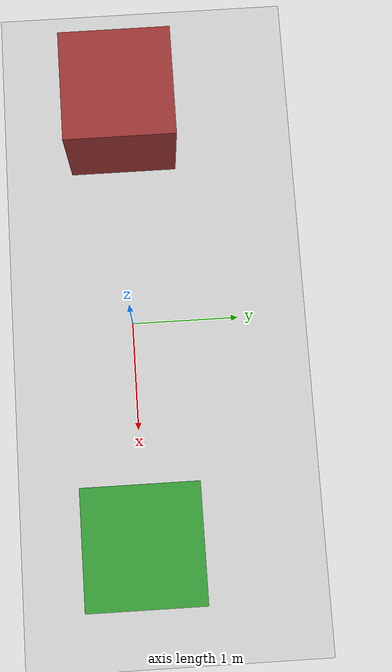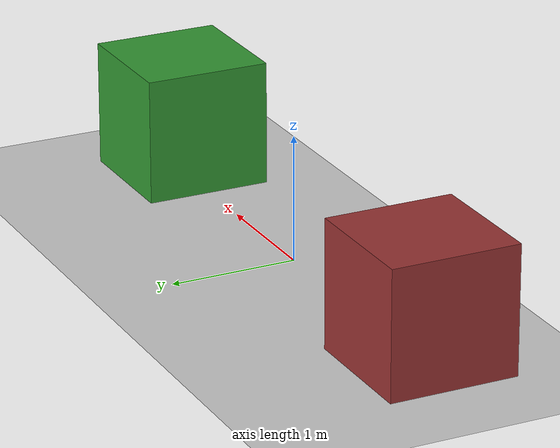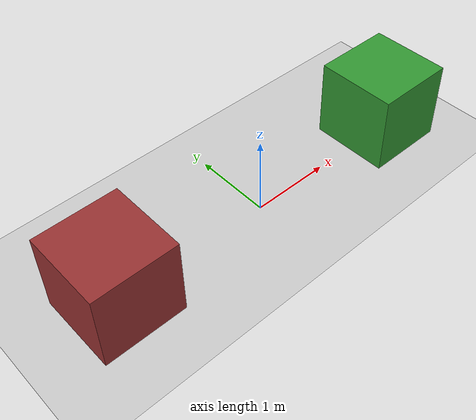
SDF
<?xml version="1.0" ?>
<sdf version="1.6">
  <world name="slip_world">

    <gui fullscreen="0">
      <plugin filename="GzScene3D" name="3D View">
        <gz-gui>
          <title>3D View</title>
          <property type="bool" key="showTitleBar">false</property>
          <property type="string" key="state">docked</property>
        </gz-gui>
        <engine>ogre2</engine>
        <scene>scene</scene>
        <ambient_light>0.4 0.4 0.4</ambient_light>
        <background_color>0.8 0.8 0.8</background_color>
      </plugin>
      <plugin filename="WorldControl" name="World control">
        <gz-gui>
          <title>World control</title>
          <property type="bool" key="showTitleBar">false</property>
          <property type="string" key="state">floating</property>
          <property type="double" key="x">0</property>
          <property type="double" key="y">0</property>
        </gz-gui>
        <play_pause>true</play_pause>
        <step>true</step>
        <start_paused>false</start_paused>
      </plugin>
      <!-- Draws lidar rays in the 3D viewport -->
      <plugin filename="VisualizeLidar" name="Visualize Lidar">
        <gz-gui>
          <property type="string" key="state">floating</property>
          <property type="double" key="x">0</property>
          <property type="double" key="y">50</property>
          <property type="double" key="width">300</property>
          <property type="double" key="height">200</property>
        </gz-gui>
      </plugin>
    </gui>

    <physics name="1ms" type="ignored">
      <max_step_size>0.001</max_step_size>
      <real_time_factor>1.0</real_time_factor>
    </physics>

    <plugin filename="gz-sim-physics-system"
            name="gz::sim::systems::Physics"/>
    <plugin filename="gz-sim-user-commands-system"
            name="gz::sim::systems::UserCommands"/>
    <plugin filename="gz-sim-scene-broadcaster-system"
            name="gz::sim::systems::SceneBroadcaster"/>
    <plugin filename="gz-sim-contact-system"
            name="gz::sim::systems::Contact"/>

    <!-- Required for ALL sensors to publish data. No render_engine specified
         so ogre2 failure does not block CPU-based sensors (lidar, IMU). -->
    <plugin filename="gz-sim-sensors-system"
            name="gz::sim::systems::Sensors"/>

    <!-- Required for IMU sensor to publish data -->
    <plugin filename="gz-sim-imu-system"
            name="gz::sim::systems::Imu"/>

    <light type="directional" name="sun">
      <cast_shadows>true</cast_shadows>
      <pose>0 0 10 0 0 0</pose>
      <diffuse>0.8 0.8 0.8 1</diffuse>
      <specular>0.2 0.2 0.2 1</specular>
      <attenuation>
        <range>1000</range>
        <constant>0.9</constant>
        <linear>0.01</linear>
        <quadratic>0.001</quadratic>
      </attenuation>
      <direction>-0.5 0.1 -0.9</direction>
    </light>

    <model name="ground_plane">
      <static>true</static>
      <link name="link">
        <collision name="collision">
          <geometry>
            <plane>
              <normal>0 0 1</normal>
              <size>100 100</size>
            </plane>
          </geometry>
        </collision>
        <visual name="visual">
          <geometry>
            <plane>
              <normal>0 0 1</normal>
              <size>100 100</size>
            </plane>
          </geometry>
          <material>
            <ambient>0.8 0.8 0.8 1</ambient>
            <diffuse>0.8 0.8 0.8 1</diffuse>
            <specular>0.8 0.8 0.8 1</specular>
          </material>
        </visual>
      </link>
    </model>

    <!-- Box in front: detected by front 3D lidar -->
    <model name="box_front">
      <static>true</static>
      <pose>2.0 0 0.5 0 0 0</pose>
      <link name="link">
        <collision name="collision">
          <geometry><box><size>1 1 1</size></box></geometry>
        </collision>
        <visual name="visual">
          <geometry><box><size>1 1 1</size></box></geometry>
          <material><ambient>0.2 0.6 0.2 1</ambient><diffuse>0.2 0.6 0.2 1</diffuse></material>
        </visual>
      </link>
    </model>

    <!-- Box behind: detected by rear 2D lidar (faces backward) -->
    <model name="box_rear">
      <static>true</static>
      <pose>-2.0 0 0.5 0 0 0</pose>
      <link name="link">
        <collision name="collision">
          <geometry><box><size>1 1 1</size></box></geometry>
        </collision>
        <visual name="visual">
          <geometry><box><size>1 1 1</size></box></geometry>
          <material><ambient>0.6 0.2 0.2 1</ambient><diffuse>0.6 0.2 0.2 1</diffuse></material>
        </visual>
      </link>
    </model>

  </world>
</sdf>
